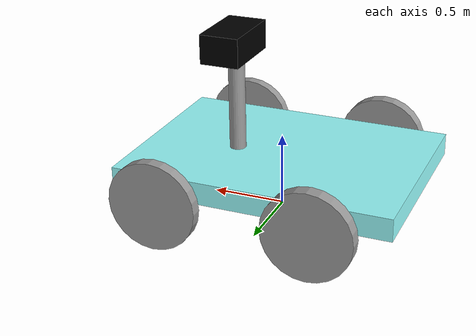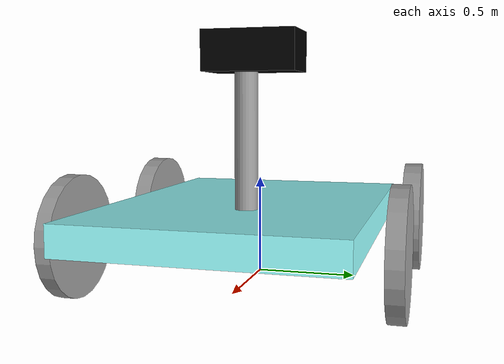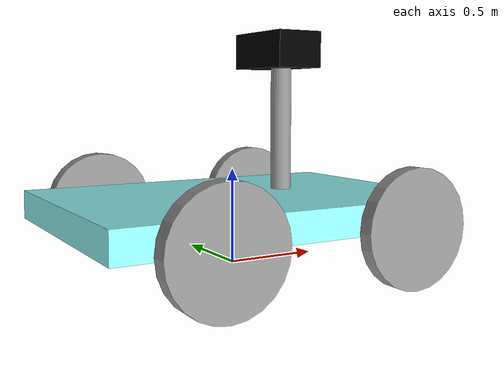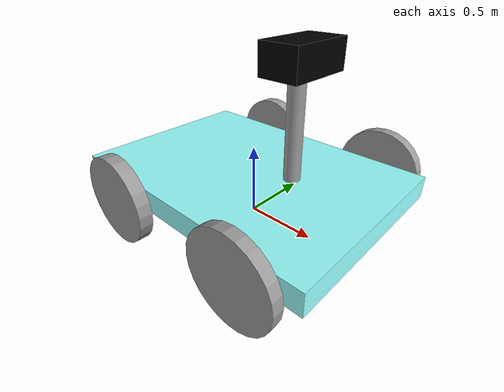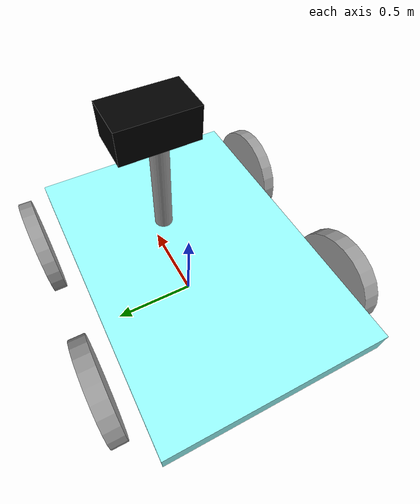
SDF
<?xml version='1.0'?>
<sdf version='1.7'>
  <model name='Robot_car'>
    <link name='chasis'>
      <inertial>
        <mass>0.387326</mass>
        <inertia>
          <ixx>0.0578591</ixx>
          <ixy>0</ixy>
          <ixz>0</ixz>
          <iyy>0.11724</iyy>
          <iyz>0</iyz>
          <izz>0.173582</izz>
        </inertia>
        <pose>0 0 1 0 -0 0</pose>
      </inertial>
      <pose>-0.002096 -0.040296 0.3 0 -0 0</pose>
      <gravity>1</gravity>
      <self_collide>0</self_collide>
      <kinematic>0</kinematic>
      <enable_wind>0</enable_wind>
      <visual name='visual'>
        <pose>0 0 0 0 -0 0</pose>
        <geometry>
          <box>
            <size>1.89968 1.33007 0.153279</size>
          </box>
        </geometry>
        <material>
          <lighting>1</lighting>
          <script>
            <uri>file://media/materials/scripts/gazebo.material</uri>
            <name>Gazebo/Grey</name>
          </script>
          <shader type='pixel'>
            <normal_map>__default__</normal_map>
          </shader>
          <ambient>0.3 0.5 0.5 1</ambient>
          <diffuse>0.6 1 1 1</diffuse>
          <specular>1 1 1 1</specular>
          <emissive>0 0 0 1</emissive>
        </material>
        <transparency>0</transparency>
        <cast_shadows>1</cast_shadows>
      </visual>
      <collision name='collision'>
        <laser_retro>0</laser_retro>
        <max_contacts>10</max_contacts>
        <pose>0 0 0 0 -0 0</pose>
        <geometry>
          <box>
            <size>1.89968 1.33007 0.153279</size>
          </box>
        </geometry>
        <surface>
          <friction>
            <ode>
              <mu>1</mu>
              <mu2>1</mu2>
              <fdir1>0 0 0</fdir1>
              <slip1>0</slip1>
              <slip2>0</slip2>
            </ode>
            <torsional>
              <coefficient>1</coefficient>
              <patch_radius>0</patch_radius>
              <surface_radius>0</surface_radius>
              <use_patch_radius>1</use_patch_radius>
              <ode>
                <slip>0</slip>
              </ode>
            </torsional>
          </friction>
          <bounce>
            <restitution_coefficient>0</restitution_coefficient>
            <threshold>1e+06</threshold>
          </bounce>
          <contact>
            <collide_without_contact>0</collide_without_contact>
            <collide_without_contact_bitmask>1</collide_without_contact_bitmask>
            <collide_bitmask>1</collide_bitmask>
            <ode>
              <soft_cfm>0</soft_cfm>
              <soft_erp>0.2</soft_erp>
              <kp>1e+13</kp>
              <kd>1</kd>
              <max_vel>0.01</max_vel>
              <min_depth>0</min_depth>
            </ode>
            <bullet>
              <split_impulse>1</split_impulse>
              <split_impulse_penetration_threshold>-0.01</split_impulse_penetration_threshold>
              <soft_cfm>0</soft_cfm>
              <soft_erp>0.2</soft_erp>
              <kp>1e+13</kp>
              <kd>1</kd>
            </bullet>
          </contact>
        </surface>
      </collision>
    </link>
    <link name='back_wheel_left'>
      <inertial>
        <mass>0.373593</mass>
        <inertia>
          <ixx>0.00867742</ixx>
          <ixy>0</ixy>
          <ixz>0</ixz>
          <iyy>0.00867742</iyy>
          <iyz>0</iyz>
          <izz>0.0168117</izz>
        </inertia>
        <pose>0 0 0.25 0 -0 0</pose>
      </inertial>
      <pose>-0.473011 0.773424 0.25 1.5707 -0 0</pose>
      <gravity>1</gravity>
      <self_collide>0</self_collide>
      <kinematic>0</kinematic>
      <enable_wind>0</enable_wind>
      <visual name='visual'>
        <pose>0 0 0 0 -0 0</pose>
        <geometry>
          <cylinder>
            <radius>0.3</radius>
            <length>0.0933963</length>
          </cylinder>
        </geometry>
        <material>
          <lighting>1</lighting>
          <script>
            <uri>file://media/materials/scripts/gazebo.material</uri>
            <name>Gazebo/Grey</name>
          </script>
          <shader type='pixel'>
            <normal_map>__default__</normal_map>
          </shader>
          <ambient>0.3 0.3 0.3 1</ambient>
          <diffuse>0.7 0.7 0.7 1</diffuse>
          <specular>0.01 0.01 0.01 1</specular>
          <emissive>0 0 0 1</emissive>
        </material>
        <transparency>0</transparency>
        <cast_shadows>1</cast_shadows>
      </visual>
      <collision name='collision'>
        <laser_retro>0</laser_retro>
        <max_contacts>10</max_contacts>
        <pose>0 0 0 0 -0 0</pose>
        <geometry>
          <cylinder>
            <radius>0.3</radius>
            <length>0.093396</length>
          </cylinder>
        </geometry>
        <surface>
          <friction>
            <ode>
              <mu>1</mu>
              <mu2>1</mu2>
              <fdir1>0 0 0</fdir1>
              <slip1>0</slip1>
              <slip2>0</slip2>
            </ode>
            <torsional>
              <coefficient>1</coefficient>
              <patch_radius>0</patch_radius>
              <surface_radius>0</surface_radius>
              <use_patch_radius>1</use_patch_radius>
              <ode>
                <slip>0</slip>
              </ode>
            </torsional>
          </friction>
          <bounce>
            <restitution_coefficient>0</restitution_coefficient>
            <threshold>1e+06</threshold>
          </bounce>
          <contact>
            <collide_without_contact>0</collide_without_contact>
            <collide_without_contact_bitmask>1</collide_without_contact_bitmask>
            <collide_bitmask>1</collide_bitmask>
            <ode>
              <soft_cfm>0</soft_cfm>
              <soft_erp>0.2</soft_erp>
              <kp>1e+13</kp>
              <kd>1</kd>
              <max_vel>0.01</max_vel>
              <min_depth>0</min_depth>
            </ode>
            <bullet>
              <split_impulse>1</split_impulse>
              <split_impulse_penetration_threshold>-0.01</split_impulse_penetration_threshold>
              <soft_cfm>0</soft_cfm>
              <soft_erp>0.2</soft_erp>
              <kp>1e+13</kp>
              <kd>1</kd>
            </bullet>
          </contact>
        </surface>
      </collision>
    </link>
    <link name='back_wheel_right'>
      <inertial>
        <mass>0.367926</mass>
        <inertia>
          <ixx>0.00853777</ixx>
          <ixy>0</ixy>
          <ixz>0</ixz>
          <iyy>0.00853777</iyy>
          <iyz>0</iyz>
          <izz>0.0165567</izz>
        </inertia>
        <pose>0 0 0.25 0 -0 0</pose>
      </inertial>
      <pose>-0.473011 -0.773424 0.25 1.5707 -0 0</pose>
      <gravity>1</gravity>
      <self_collide>0</self_collide>
      <kinematic>0</kinematic>
      <enable_wind>0</enable_wind>
      <visual name='visual'>
        <pose>0 0 0 0 -0 0</pose>
        <geometry>
          <cylinder>
            <radius>0.3</radius>
            <length>0.0919849</length>
          </cylinder>
        </geometry>
        <material>
          <lighting>1</lighting>
          <script>
            <uri>file://media/materials/scripts/gazebo.material</uri>
            <name>Gazebo/Grey</name>
          </script>
          <shader type='pixel'>
            <normal_map>__default__</normal_map>
          </shader>
          <ambient>0.3 0.3 0.3 1</ambient>
          <diffuse>0.7 0.7 0.7 1</diffuse>
          <specular>0.01 0.01 0.01 1</specular>
          <emissive>0 0 0 1</emissive>
        </material>
        <transparency>0</transparency>
        <cast_shadows>1</cast_shadows>
      </visual>
      <collision name='collision'>
        <laser_retro>0</laser_retro>
        <max_contacts>10</max_contacts>
        <pose>0 0 0 0 -0 0</pose>
        <geometry>
          <cylinder>
            <radius>0.3</radius>
            <length>0.091985</length>
          </cylinder>
        </geometry>
        <surface>
          <friction>
            <ode>
              <mu>1</mu>
              <mu2>1</mu2>
              <fdir1>0 0 0</fdir1>
              <slip1>0</slip1>
              <slip2>0</slip2>
            </ode>
            <torsional>
              <coefficient>1</coefficient>
              <patch_radius>0</patch_radius>
              <surface_radius>0</surface_radius>
              <use_patch_radius>1</use_patch_radius>
              <ode>
                <slip>0</slip>
              </ode>
            </torsional>
          </friction>
          <bounce>
            <restitution_coefficient>0</restitution_coefficient>
            <threshold>1e+06</threshold>
          </bounce>
          <contact>
            <collide_without_contact>0</collide_without_contact>
            <collide_without_contact_bitmask>1</collide_without_contact_bitmask>
            <collide_bitmask>1</collide_bitmask>
            <ode>
              <soft_cfm>0</soft_cfm>
              <soft_erp>0.2</soft_erp>
              <kp>1e+13</kp>
              <kd>1</kd>
              <max_vel>0.01</max_vel>
              <min_depth>0</min_depth>
            </ode>
            <bullet>
              <split_impulse>1</split_impulse>
              <split_impulse_penetration_threshold>-0.01</split_impulse_penetration_threshold>
              <soft_cfm>0</soft_cfm>
              <soft_erp>0.2</soft_erp>
              <kp>1e+13</kp>
              <kd>1</kd>
            </bullet>
          </contact>
        </surface>
      </collision>
    </link>

   <link name='camera'>
  <pose>0.318285 0.056654 1.13802 0 -0 0</pose>
  <sensor name='camera_sensor' type='camera'>
    <camera>
      <horizontal_fov>1.39626</horizontal_fov>
      <image>
        <width>640</width>
        <height>480</height>
      </image>
      <clip>
        <near>0.1</near>
        <far>100</far>
      </clip>
    </camera>
    <always_on>1</always_on>
    <update_rate>30</update_rate>
    <visualize>true</visualize>
    <plugin name="camera_plugin" filename="libgazebo_ros_camera.so">
      <cameraName>robot_camera</cameraName>
      <frameName>camera_link</frameName>
      <imageTopicName>/camera/image_raw</imageTopicName>
      <cameraInfoTopicName>/camera/camera_info</cameraInfoTopicName>
    </plugin>
  </sensor>
  <self_collide>0</self_collide>
  <inertial>
    <pose>0 0 0 0 -0 0</pose>
    <inertia>
      <ixx>1</ixx>
      <ixy>0</ixy>
      <ixz>0</ixz>
      <iyy>1</iyy>
      <iyz>0</iyz>
      <izz>1</izz>
    </inertia>
    <mass>1</mass>
  </inertial>
  <enable_wind>0</enable_wind>
  <kinematic>0</kinematic>
  <gravity>1</gravity>
  <visual name='camera_visual'>
    <geometry>
      <box>
        <size>0.263222 0.452402 0.195807</size>
      </box>
    </geometry>
    <material>
      <ambient>0 0 0 1</ambient>
      <diffuse>0 0 0 1</diffuse>
      <specular>0 0 0 1</specular>
      <emissive>0 0 0 1</emissive>
    </material>
    <pose>0 0 0 0 -0 0</pose>
    <transparency>0</transparency>
    <cast_shadows>1</cast_shadows>
  </visual>
</link>

    <link name='front_wheel_left'>
      <inertial>
        <mass>0.318017</mass>
        <inertia>
          <ixx>0.00732291</ixx>
          <ixy>0</ixy>
          <ixz>0</ixz>
          <iyy>0.00732291</iyy>
          <iyz>0</iyz>
          <izz>0.0143108</izz>
        </inertia>
        <pose>0 0 0 0 -0 0</pose>
      </inertial>
      <pose>0.566619 0.773424 0.25 1.5707 -0 0</pose>
      <gravity>1</gravity>
      <self_collide>0</self_collide>
      <kinematic>0</kinematic>
      <enable_wind>0</enable_wind>
      <visual name='visual'>
        <pose>0 0 0 0 -0 0</pose>
        <geometry>
          <cylinder>
            <radius>0.3</radius>
            <length>0.0795098</length>
          </cylinder>
        </geometry>
        <material>
          <lighting>1</lighting>
          <script>
            <uri>file://media/materials/scripts/gazebo.material</uri>
            <name>Gazebo/Grey</name>
          </script>
          <shader type='pixel'>
            <normal_map>__default__</normal_map>
          </shader>
          <ambient>0.3 0.3 0.3 1</ambient>
          <diffuse>0.7 0.7 0.7 1</diffuse>
          <specular>0.01 0.01 0.01 1</specular>
          <emissive>0 0 0 1</emissive>
        </material>
        <transparency>0</transparency>
        <cast_shadows>1</cast_shadows>
      </visual>
      <collision name='collision'>
        <laser_retro>0</laser_retro>
        <max_contacts>10</max_contacts>
        <pose>0 0 0 0 -0 0</pose>
        <geometry>
          <cylinder>
            <radius>0.3</radius>
            <length>0.07951</length>
          </cylinder>
        </geometry>
        <surface>
          <friction>
            <ode>
              <mu>1</mu>
              <mu2>1</mu2>
              <fdir1>0 0 0</fdir1>
              <slip1>0</slip1>
              <slip2>0</slip2>
            </ode>
            <torsional>
              <coefficient>1</coefficient>
              <patch_radius>0</patch_radius>
              <surface_radius>0</surface_radius>
              <use_patch_radius>1</use_patch_radius>
              <ode>
                <slip>0</slip>
              </ode>
            </torsional>
          </friction>
          <bounce>
            <restitution_coefficient>0</restitution_coefficient>
            <threshold>1e+06</threshold>
          </bounce>
          <contact>
            <collide_without_contact>0</collide_without_contact>
            <collide_without_contact_bitmask>1</collide_without_contact_bitmask>
            <collide_bitmask>1</collide_bitmask>
            <ode>
              <soft_cfm>0</soft_cfm>
              <soft_erp>0.2</soft_erp>
              <kp>1e+13</kp>
              <kd>1</kd>
              <max_vel>0.01</max_vel>
              <min_depth>0</min_depth>
            </ode>
            <bullet>
              <split_impulse>1</split_impulse>
              <split_impulse_penetration_threshold>-0.01</split_impulse_penetration_threshold>
              <soft_cfm>0</soft_cfm>
              <soft_erp>0.2</soft_erp>
              <kp>1e+13</kp>
              <kd>1</kd>
            </bullet>
          </contact>
        </surface>
      </collision>
    </link>
    <link name='front_wheel_right'>
      <inertial>
        <mass>0.297864</mass>
        <inertia>
          <ixx>0.00683959</ixx>
          <ixy>0</ixy>
          <ixz>0</ixz>
          <iyy>0.00683959</iyy>
          <iyz>0</iyz>
          <izz>0.0134039</izz>
        </inertia>
        <pose>0 0 0 0 -0 0</pose>
      </inertial>
      <pose>0.566619 -0.773424 0.25 1.5707 -0 0</pose>
      <gravity>1</gravity>
      <self_collide>0</self_collide>
      <kinematic>0</kinematic>
      <enable_wind>0</enable_wind>
      <visual name='visual'>
        <pose>0 0 0 0 -0 0</pose>
        <geometry>
          <cylinder>
            <radius>0.3</radius>
            <length>0.074467</length>
          </cylinder>
        </geometry>
        <material>
          <lighting>1</lighting>
          <script>
            <uri>file://media/materials/scripts/gazebo.material</uri>
            <name>Gazebo/Grey</name>
          </script>
          <shader type='pixel'>
            <normal_map>__default__</normal_map>
          </shader>
          <ambient>0.3 0.3 0.3 1</ambient>
          <diffuse>0.7 0.7 0.7 1</diffuse>
          <specular>0.01 0.01 0.01 1</specular>
          <emissive>0 0 0 1</emissive>
        </material>
        <transparency>0</transparency>
        <cast_shadows>1</cast_shadows>
      </visual>
      <collision name='collision'>
        <laser_retro>0</laser_retro>
        <max_contacts>10</max_contacts>
        <pose>0 0 0 0 -0 0</pose>
        <geometry>
          <cylinder>
            <radius>0.3</radius>
            <length>0.074467</length>
          </cylinder>
        </geometry>
        <surface>
          <friction>
            <ode>
              <mu>1</mu>
              <mu2>1</mu2>
              <fdir1>0 0 0</fdir1>
              <slip1>0</slip1>
              <slip2>0</slip2>
            </ode>
            <torsional>
              <coefficient>1</coefficient>
              <patch_radius>0</patch_radius>
              <surface_radius>0</surface_radius>
              <use_patch_radius>1</use_patch_radius>
              <ode>
                <slip>0</slip>
              </ode>
            </torsional>
          </friction>
          <bounce>
            <restitution_coefficient>0</restitution_coefficient>
            <threshold>1e+06</threshold>
          </bounce>
          <contact>
            <collide_without_contact>0</collide_without_contact>
            <collide_without_contact_bitmask>1</collide_without_contact_bitmask>
            <collide_bitmask>1</collide_bitmask>
            <ode>
              <soft_cfm>0</soft_cfm>
              <soft_erp>0.2</soft_erp>
              <kp>1e+13</kp>
              <kd>1</kd>
              <max_vel>0.01</max_vel>
              <min_depth>0</min_depth>
            </ode>
            <bullet>
              <split_impulse>1</split_impulse>
              <split_impulse_penetration_threshold>-0.01</split_impulse_penetration_threshold>
              <soft_cfm>0</soft_cfm>
              <soft_erp>0.2</soft_erp>
              <kp>1e+13</kp>
              <kd>1</kd>
            </bullet>
          </contact>
        </surface>
      </collision>
    </link>
    <link name='rod'>
      <inertial>
        <mass>0.0100661</mass>
        <inertia>
          <ixx>0.00054379</ixx>
          <ixy>0</ixy>
          <ixz>0</ixz>
          <iyy>0.00054379</iyy>
          <iyz>0</iyz>
          <izz>1.58e-05</izz>
        </inertia>
        <pose>0 0 0 0 -0 0</pose>
      </inertial>
      <pose>0.318285 0.016654 0.65 0 -0 0</pose>
      <gravity>1</gravity>
      <self_collide>0</self_collide>
      <kinematic>0</kinematic>
      <enable_wind>0</enable_wind>
      <visual name='visual'>
        <pose>0 0 0 0 -0 0</pose>
        <geometry>
          <cylinder>
            <radius>0.0560352</radius>
            <length>0.799274</length>
          </cylinder>
        </geometry>
        <material>
          <lighting>1</lighting>
          <script>
            <uri>file://media/materials/scripts/gazebo.material</uri>
            <name>Gazebo/Grey</name>
          </script>
          <shader type='pixel'>
            <normal_map>__default__</normal_map>
          </shader>
          <ambient>0.3 0.3 0.3 1</ambient>
          <diffuse>0.7 0.7 0.7 1</diffuse>
          <specular>0.01 0.01 0.01 1</specular>
          <emissive>0 0 0 1</emissive>
        </material>
        <transparency>0</transparency>
        <cast_shadows>1</cast_shadows>
      </visual>
      <collision name='collision'>
        <laser_retro>0</laser_retro>
        <max_contacts>10</max_contacts>
        <pose>0 0 0 0 -0 0</pose>
        <geometry>
          <cylinder>
            <radius>0.056035</radius>
            <length>0.799274</length>
          </cylinder>
        </geometry>
        <surface>
          <friction>
            <ode>
              <mu>1</mu>
              <mu2>1</mu2>
              <fdir1>0 0 0</fdir1>
              <slip1>0</slip1>
              <slip2>0</slip2>
            </ode>
            <torsional>
              <coefficient>1</coefficient>
              <patch_radius>0</patch_radius>
              <surface_radius>0</surface_radius>
              <use_patch_radius>1</use_patch_radius>
              <ode>
                <slip>0</slip>
              </ode>
            </torsional>
          </friction>
          <bounce>
            <restitution_coefficient>0</restitution_coefficient>
            <threshold>1e+06</threshold>
          </bounce>
          <contact>
            <collide_without_contact>0</collide_without_contact>
            <collide_without_contact_bitmask>1</collide_without_contact_bitmask>
            <collide_bitmask>1</collide_bitmask>
            <ode>
              <soft_cfm>0</soft_cfm>
              <soft_erp>0.2</soft_erp>
              <kp>1e+13</kp>
              <kd>1</kd>
              <max_vel>0.01</max_vel>
              <min_depth>0</min_depth>
            </ode>
            <bullet>
              <split_impulse>1</split_impulse>
              <split_impulse_penetration_threshold>-0.01</split_impulse_penetration_threshold>
              <soft_cfm>0</soft_cfm>
              <soft_erp>0.2</soft_erp>
              <kp>1e+13</kp>
              <kd>1</kd>
            </bullet>
          </contact>
        </surface>
      </collision>
    </link>
    <joint name='left_back_wheel_joint' type='revolute'>
      <parent>chasis</parent>
      <child>back_wheel_left</child>
      <pose>-0.85 0.526 0.25 1.5707 -0 0</pose>
      <axis>
        <xyz>1 0 0</xyz>
        <limit>
          <lower>-2</lower>
          <upper>2</upper>
          <effort>50</effort>
          <velocity>20</velocity>
        </limit>
        <dynamics>
          <spring_reference>0</spring_reference>
          <spring_stiffness>0</spring_stiffness>
          <damping>0.7</damping>
          <friction>0.5</friction>
        </dynamics>
      </axis>
      <physics>
        <ode>
          <limit>
            <cfm>0</cfm>
            <erp>0.2</erp>
          </limit>
          <suspension>
            <cfm>0</cfm>
            <erp>0.2</erp>
          </suspension>
        </ode>
      </physics>
    </joint>
    <joint name='left_front_wheel_joint' type='revolute2'>
      <parent>chasis</parent>
      <child>front_wheel_left</child>
      <pose>0.85 0.526 0.25 1.5707 -0 0</pose>
      <axis>
        <xyz>1 0 0</xyz>
        <limit>
          <lower>-2</lower>
          <upper>2</upper>
          <effort>50</effort>
          <velocity>20</velocity>
        </limit>
        <dynamics>
          <spring_reference>0</spring_reference>
          <spring_stiffness>0</spring_stiffness>
          <damping>0.7</damping>
          <friction>0.5</friction>
        </dynamics>
      </axis>
      <physics>
        <ode>
          <limit>
            <cfm>0</cfm>
            <erp>0.2</erp>
          </limit>
          <suspension>
            <cfm>0</cfm>
            <erp>0.2</erp>
          </suspension>
        </ode>
      </physics>

    </joint>
    <joint name='right_back_wheel_joint' type='revolute'>
      <parent>chasis</parent>
      <child>back_wheel_right</child>
      <pose>-0.85 -0.526 0.25 1.5707 -0 0</pose>
      <axis>
        <xyz>1 0 0</xyz>
        <limit>
          <lower>-2</lower>
          <upper>2</upper>
          <effort>50</effort>
          <velocity>20</velocity>
        </limit>
        <dynamics>
          <spring_reference>0</spring_reference>
          <spring_stiffness>0</spring_stiffness>
          <damping>0.7</damping>
          <friction>0.5</friction>
        </dynamics>
      </axis>
      <physics>
        <ode>
          <limit>
            <cfm>0</cfm>
            <erp>0.2</erp>
          </limit>
          <suspension>
            <cfm>0</cfm>
            <erp>0.2</erp>
          </suspension>
        </ode>
      </physics>
    </joint>
    <joint name='right_front_wheel_joint' type='revolute2'>
      <parent>chasis</parent>
      <child>front_wheel_right</child>
      <pose>0.85 -0.526 0.25 1.5707 -0 0</pose>
      <axis>
        <xyz>1 0 0</xyz>
        <limit>
          <lower>-2</lower>
          <upper>2</upper>
          <effort>50</effort>
          <velocity>20</velocity>
        </limit>
        <dynamics>
          <spring_reference>0</spring_reference>
          <spring_stiffness>0</spring_stiffness>
          <damping>0.7</damping>
          <friction>0.5</friction>
        </dynamics>
      </axis>
      <physics>
        <ode>
          <limit>
            <cfm>0</cfm>
            <erp>0.2</erp>
          </limit>
          <suspension>
            <cfm>0</cfm>
            <erp>0.2</erp>
          </suspension>
        </ode>
      </physics>

    </joint>
    <joint name='rod_to_camera_joint' type='revolute'>
      <parent>rod</parent>
      <child>camera</child>
      <pose>0 0 0 0 -0 0</pose>
      <physics>
        <ode>
          <limit>
            <cfm>0</cfm>
            <erp>0.2</erp>
          </limit>
          <suspension>
            <cfm>0</cfm>
            <erp>0.2</erp>
          </suspension>
        </ode>
      </physics>
    </joint>
    <static>0</static>
    <allow_auto_disable>1</allow_auto_disable>
  </model>
</sdf>
